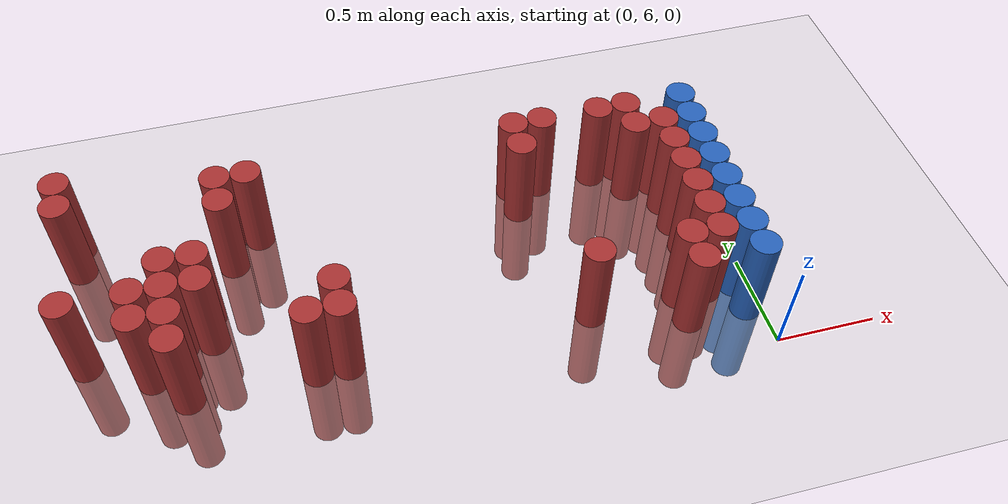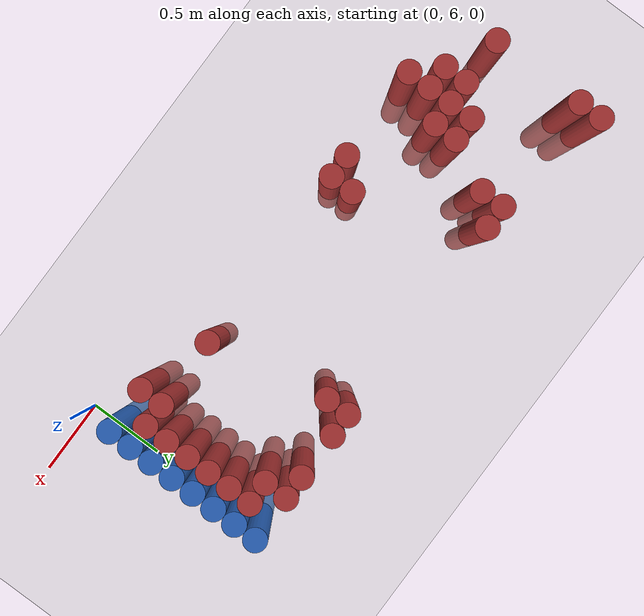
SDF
<sdf version="1.6">
 <world name="default">
  <model name="ground_plane">
   <static>1</static>
   <link name="link">
    <collision name="collision">
     <geometry><plane><normal>0 0 1</normal><size>100 100</size></plane></geometry>
     <surface><friction><ode><mu>100</mu><mu2>50</mu2></ode></friction></surface>
    </collision>
    <visual name="visual">
     <cast_shadows>0</cast_shadows>
     <geometry><plane><normal>0 0 1</normal><size>100 100</size></plane></geometry>
     <material>
      <script><uri>file://media/materials/scripts/gazebo.material</uri><name>Gazebo/Grey</name></script>
     </material>
    </visual>
   </link>
  </model>
  <model name="unit_cylinder_201">
   <static>1</static>
   <pose>-3.225000 6.675000 0.000000 0.000000 0.000000 0.000000</pose>
   <link name="link">
    <inertial>
     <mass>1</mass>
     <inertia><ixx>0.145833</ixx><ixy>0</ixy><ixz>0</ixz><iyy>0.145833</iyy><iyz>0</iyz><izz>0.125</izz></inertia>
    </inertial>
    <collision name="collision">
     <geometry><cylinder><radius>0.075000</radius><length>1</length></cylinder></geometry>
    </collision>
    <visual name="visual">
     <geometry><cylinder><radius>0.075000</radius><length>1</length></cylinder></geometry>
     <material>
      <ambient>0.648000 0.192000 0.192000 1</ambient>
      <diffuse>0.648000 0.192000 0.192000 1</diffuse>
     </material>
     <material>
      <script><name>Gazebo/Grey</name><uri>file://media/materials/scripts/gazebo.material</uri></script>
     </material>
    </visual>
    <sensor name="sensor_contact" type="contact"><contact><collision>collision</collision></contact></sensor>
   </link>
   <plugin filename="gz-sim-touchplugin-system" name="gz::sim::systems::TouchPlugin">
    <target>robot</target>
    <namespace>robot</namespace>
    <time>0.001</time>
    <enabled>true</enabled>
   </plugin>
  </model>
  <model name="unit_cylinder_202">
   <static>1</static>
   <pose>-3.225000 7.275000 0.000000 0.000000 0.000000 0.000000</pose>
   <link name="link">
    <inertial>
     <mass>1</mass>
     <inertia><ixx>0.145833</ixx><ixy>0</ixy><ixz>0</ixz><iyy>0.145833</iyy><iyz>0</iyz><izz>0.125</izz></inertia>
    </inertial>
    <collision name="collision">
     <geometry><cylinder><radius>0.075000</radius><length>1</length></cylinder></geometry>
    </collision>
    <visual name="visual">
     <geometry><cylinder><radius>0.075000</radius><length>1</length></cylinder></geometry>
     <material>
      <ambient>0.648000 0.192000 0.192000 1</ambient>
      <diffuse>0.648000 0.192000 0.192000 1</diffuse>
     </material>
     <material>
      <script><name>Gazebo/Grey</name><uri>file://media/materials/scripts/gazebo.material</uri></script>
     </material>
    </visual>
    <sensor name="sensor_contact" type="contact"><contact><collision>collision</collision></contact></sensor>
   </link>
   <plugin filename="gz-sim-touchplugin-system" name="gz::sim::systems::TouchPlugin">
    <target>robot</target>
    <namespace>robot</namespace>
    <time>0.001</time>
    <enabled>true</enabled>
   </plugin>
  </model>
  <model name="unit_cylinder_203">
   <static>1</static>
   <pose>-3.225000 7.425000 0.000000 0.000000 0.000000 0.000000</pose>
   <link name="link">
    <inertial>
     <mass>1</mass>
     <inertia><ixx>0.145833</ixx><ixy>0</ixy><ixz>0</ixz><iyy>0.145833</iyy><iyz>0</iyz><izz>0.125</izz></inertia>
    </inertial>
    <collision name="collision">
     <geometry><cylinder><radius>0.075000</radius><length>1</length></cylinder></geometry>
    </collision>
    <visual name="visual">
     <geometry><cylinder><radius>0.075000</radius><length>1</length></cylinder></geometry>
     <material>
      <ambient>0.648000 0.192000 0.192000 1</ambient>
      <diffuse>0.648000 0.192000 0.192000 1</diffuse>
     </material>
     <material>
      <script><name>Gazebo/Grey</name><uri>file://media/materials/scripts/gazebo.material</uri></script>
     </material>
    </visual>
    <sensor name="sensor_contact" type="contact"><contact><collision>collision</collision></contact></sensor>
   </link>
   <plugin filename="gz-sim-touchplugin-system" name="gz::sim::systems::TouchPlugin">
    <target>robot</target>
    <namespace>robot</namespace>
    <time>0.001</time>
    <enabled>true</enabled>
   </plugin>
  </model>
  <model name="unit_cylinder_212">
   <static>1</static>
   <pose>-2.925000 6.525000 0.000000 0.000000 0.000000 0.000000</pose>
   <link name="link">
    <inertial>
     <mass>1</mass>
     <inertia><ixx>0.145833</ixx><ixy>0</ixy><ixz>0</ixz><iyy>0.145833</iyy><iyz>0</iyz><izz>0.125</izz></inertia>
    </inertial>
    <collision name="collision">
     <geometry><cylinder><radius>0.075000</radius><length>1</length></cylinder></geometry>
    </collision>
    <visual name="visual">
     <geometry><cylinder><radius>0.075000</radius><length>1</length></cylinder></geometry>
     <material>
      <ambient>0.648000 0.192000 0.192000 1</ambient>
      <diffuse>0.648000 0.192000 0.192000 1</diffuse>
     </material>
     <material>
      <script><name>Gazebo/Grey</name><uri>file://media/materials/scripts/gazebo.material</uri></script>
     </material>
    </visual>
    <sensor name="sensor_contact" type="contact"><contact><collision>collision</collision></contact></sensor>
   </link>
   <plugin filename="gz-sim-touchplugin-system" name="gz::sim::systems::TouchPlugin">
    <target>robot</target>
    <namespace>robot</namespace>
    <time>0.001</time>
    <enabled>true</enabled>
   </plugin>
  </model>
  <model name="unit_cylinder_213">
   <static>1</static>
   <pose>-2.925000 6.675000 0.000000 0.000000 0.000000 0.000000</pose>
   <link name="link">
    <inertial>
     <mass>1</mass>
     <inertia><ixx>0.145833</ixx><ixy>0</ixy><ixz>0</ixz><iyy>0.145833</iyy><iyz>0</iyz><izz>0.125</izz></inertia>
    </inertial>
    <collision name="collision">
     <geometry><cylinder><radius>0.075000</radius><length>1</length></cylinder></geometry>
    </collision>
    <visual name="visual">
     <geometry><cylinder><radius>0.075000</radius><length>1</length></cylinder></geometry>
     <material>
      <ambient>0.648000 0.192000 0.192000 1</ambient>
      <diffuse>0.648000 0.192000 0.192000 1</diffuse>
     </material>
     <material>
      <script><name>Gazebo/Grey</name><uri>file://media/materials/scripts/gazebo.material</uri></script>
     </material>
    </visual>
    <sensor name="sensor_contact" type="contact"><contact><collision>collision</collision></contact></sensor>
   </link>
   <plugin filename="gz-sim-touchplugin-system" name="gz::sim::systems::TouchPlugin">
    <target>robot</target>
    <namespace>robot</namespace>
    <time>0.001</time>
    <enabled>true</enabled>
   </plugin>
  </model>
  <model name="unit_cylinder_221">
   <static>1</static>
   <pose>-2.775000 6.375000 0.000000 0.000000 0.000000 0.000000</pose>
   <link name="link">
    <inertial>
     <mass>1</mass>
     <inertia><ixx>0.145833</ixx><ixy>0</ixy><ixz>0</ixz><iyy>0.145833</iyy><iyz>0</iyz><izz>0.125</izz></inertia>
    </inertial>
    <collision name="collision">
     <geometry><cylinder><radius>0.075000</radius><length>1</length></cylinder></geometry>
    </collision>
    <visual name="visual">
     <geometry><cylinder><radius>0.075000</radius><length>1</length></cylinder></geometry>
     <material>
      <ambient>0.648000 0.192000 0.192000 1</ambient>
      <diffuse>0.648000 0.192000 0.192000 1</diffuse>
     </material>
     <material>
      <script><name>Gazebo/Grey</name><uri>file://media/materials/scripts/gazebo.material</uri></script>
     </material>
    </visual>
    <sensor name="sensor_contact" type="contact"><contact><collision>collision</collision></contact></sensor>
   </link>
   <plugin filename="gz-sim-touchplugin-system" name="gz::sim::systems::TouchPlugin">
    <target>robot</target>
    <namespace>robot</namespace>
    <time>0.001</time>
    <enabled>true</enabled>
   </plugin>
  </model>
  <model name="unit_cylinder_222">
   <static>1</static>
   <pose>-2.775000 6.525000 0.000000 0.000000 0.000000 0.000000</pose>
   <link name="link">
    <inertial>
     <mass>1</mass>
     <inertia><ixx>0.145833</ixx><ixy>0</ixy><ixz>0</ixz><iyy>0.145833</iyy><iyz>0</iyz><izz>0.125</izz></inertia>
    </inertial>
    <collision name="collision">
     <geometry><cylinder><radius>0.075000</radius><length>1</length></cylinder></geometry>
    </collision>
    <visual name="visual">
     <geometry><cylinder><radius>0.075000</radius><length>1</length></cylinder></geometry>
     <material>
      <ambient>0.648000 0.192000 0.192000 1</ambient>
      <diffuse>0.648000 0.192000 0.192000 1</diffuse>
     </material>
     <material>
      <script><name>Gazebo/Grey</name><uri>file://media/materials/scripts/gazebo.material</uri></script>
     </material>
    </visual>
    <sensor name="sensor_contact" type="contact"><contact><collision>collision</collision></contact></sensor>
   </link>
   <plugin filename="gz-sim-touchplugin-system" name="gz::sim::systems::TouchPlugin">
    <target>robot</target>
    <namespace>robot</namespace>
    <time>0.001</time>
    <enabled>true</enabled>
   </plugin>
  </model>
  <model name="unit_cylinder_223">
   <static>1</static>
   <pose>-2.775000 6.675000 0.000000 0.000000 0.000000 0.000000</pose>
   <link name="link">
    <inertial>
     <mass>1</mass>
     <inertia><ixx>0.145833</ixx><ixy>0</ixy><ixz>0</ixz><iyy>0.145833</iyy><iyz>0</iyz><izz>0.125</izz></inertia>
    </inertial>
    <collision name="collision">
     <geometry><cylinder><radius>0.075000</radius><length>1</length></cylinder></geometry>
    </collision>
    <visual name="visual">
     <geometry><cylinder><radius>0.075000</radius><length>1</length></cylinder></geometry>
     <material>
      <ambient>0.648000 0.192000 0.192000 1</ambient>
      <diffuse>0.648000 0.192000 0.192000 1</diffuse>
     </material>
     <material>
      <script><name>Gazebo/Grey</name><uri>file://media/materials/scripts/gazebo.material</uri></script>
     </material>
    </visual>
    <sensor name="sensor_contact" type="contact"><contact><collision>collision</collision></contact></sensor>
   </link>
   <plugin filename="gz-sim-touchplugin-system" name="gz::sim::systems::TouchPlugin">
    <target>robot</target>
    <namespace>robot</namespace>
    <time>0.001</time>
    <enabled>true</enabled>
   </plugin>
  </model>
  <model name="unit_cylinder_224">
   <static>1</static>
   <pose>-2.775000 6.825000 0.000000 0.000000 0.000000 0.000000</pose>
   <link name="link">
    <inertial>
     <mass>1</mass>
     <inertia><ixx>0.145833</ixx><ixy>0</ixy><ixz>0</ixz><iyy>0.145833</iyy><iyz>0</iyz><izz>0.125</izz></inertia>
    </inertial>
    <collision name="collision">
     <geometry><cylinder><radius>0.075000</radius><length>1</length></cylinder></geometry>
    </collision>
    <visual name="visual">
     <geometry><cylinder><radius>0.075000</radius><length>1</length></cylinder></geometry>
     <material>
      <ambient>0.648000 0.192000 0.192000 1</ambient>
      <diffuse>0.648000 0.192000 0.192000 1</diffuse>
     </material>
     <material>
      <script><name>Gazebo/Grey</name><uri>file://media/materials/scripts/gazebo.material</uri></script>
     </material>
    </visual>
    <sensor name="sensor_contact" type="contact"><contact><collision>collision</collision></contact></sensor>
   </link>
   <plugin filename="gz-sim-touchplugin-system" name="gz::sim::systems::TouchPlugin">
    <target>robot</target>
    <namespace>robot</namespace>
    <time>0.001</time>
    <enabled>true</enabled>
   </plugin>
  </model>
  <model name="unit_cylinder_235">
   <static>1</static>
   <pose>-2.625000 6.675000 0.000000 0.000000 0.000000 0.000000</pose>
   <link name="link">
    <inertial>
     <mass>1</mass>
     <inertia><ixx>0.145833</ixx><ixy>0</ixy><ixz>0</ixz><iyy>0.145833</iyy><iyz>0</iyz><izz>0.125</izz></inertia>
    </inertial>
    <collision name="collision">
     <geometry><cylinder><radius>0.075000</radius><length>1</length></cylinder></geometry>
    </collision>
    <visual name="visual">
     <geometry><cylinder><radius>0.075000</radius><length>1</length></cylinder></geometry>
     <material>
      <ambient>0.648000 0.192000 0.192000 1</ambient>
      <diffuse>0.648000 0.192000 0.192000 1</diffuse>
     </material>
     <material>
      <script><name>Gazebo/Grey</name><uri>file://media/materials/scripts/gazebo.material</uri></script>
     </material>
    </visual>
    <sensor name="sensor_contact" type="contact"><contact><collision>collision</collision></contact></sensor>
   </link>
   <plugin filename="gz-sim-touchplugin-system" name="gz::sim::systems::TouchPlugin">
    <target>robot</target>
    <namespace>robot</namespace>
    <time>0.001</time>
    <enabled>true</enabled>
   </plugin>
  </model>
  <model name="unit_cylinder_236">
   <static>1</static>
   <pose>-2.625000 6.825000 0.000000 0.000000 0.000000 0.000000</pose>
   <link name="link">
    <inertial>
     <mass>1</mass>
     <inertia><ixx>0.145833</ixx><ixy>0</ixy><ixz>0</ixz><iyy>0.145833</iyy><iyz>0</iyz><izz>0.125</izz></inertia>
    </inertial>
    <collision name="collision">
     <geometry><cylinder><radius>0.075000</radius><length>1</length></cylinder></geometry>
    </collision>
    <visual name="visual">
     <geometry><cylinder><radius>0.075000</radius><length>1</length></cylinder></geometry>
     <material>
      <ambient>0.648000 0.192000 0.192000 1</ambient>
      <diffuse>0.648000 0.192000 0.192000 1</diffuse>
     </material>
     <material>
      <script><name>Gazebo/Grey</name><uri>file://media/materials/scripts/gazebo.material</uri></script>
     </material>
    </visual>
    <sensor name="sensor_contact" type="contact"><contact><collision>collision</collision></contact></sensor>
   </link>
   <plugin filename="gz-sim-touchplugin-system" name="gz::sim::systems::TouchPlugin">
    <target>robot</target>
    <namespace>robot</namespace>
    <time>0.001</time>
    <enabled>true</enabled>
   </plugin>
  </model>
  <model name="unit_cylinder_245">
   <static>1</static>
   <pose>-2.475000 7.125000 0.000000 0.000000 0.000000 0.000000</pose>
   <link name="link">
    <inertial>
     <mass>1</mass>
     <inertia><ixx>0.145833</ixx><ixy>0</ixy><ixz>0</ixz><iyy>0.145833</iyy><iyz>0</iyz><izz>0.125</izz></inertia>
    </inertial>
    <collision name="collision">
     <geometry><cylinder><radius>0.075000</radius><length>1</length></cylinder></geometry>
    </collision>
    <visual name="visual">
     <geometry><cylinder><radius>0.075000</radius><length>1</length></cylinder></geometry>
     <material>
      <ambient>0.648000 0.192000 0.192000 1</ambient>
      <diffuse>0.648000 0.192000 0.192000 1</diffuse>
     </material>
     <material>
      <script><name>Gazebo/Grey</name><uri>file://media/materials/scripts/gazebo.material</uri></script>
     </material>
    </visual>
    <sensor name="sensor_contact" type="contact"><contact><collision>collision</collision></contact></sensor>
   </link>
   <plugin filename="gz-sim-touchplugin-system" name="gz::sim::systems::TouchPlugin">
    <target>robot</target>
    <namespace>robot</namespace>
    <time>0.001</time>
    <enabled>true</enabled>
   </plugin>
  </model>
  <model name="unit_cylinder_246">
   <static>1</static>
   <pose>-2.475000 7.275000 0.000000 0.000000 0.000000 0.000000</pose>
   <link name="link">
    <inertial>
     <mass>1</mass>
     <inertia><ixx>0.145833</ixx><ixy>0</ixy><ixz>0</ixz><iyy>0.145833</iyy><iyz>0</iyz><izz>0.125</izz></inertia>
    </inertial>
    <collision name="collision">
     <geometry><cylinder><radius>0.075000</radius><length>1</length></cylinder></geometry>
    </collision>
    <visual name="visual">
     <geometry><cylinder><radius>0.075000</radius><length>1</length></cylinder></geometry>
     <material>
      <ambient>0.648000 0.192000 0.192000 1</ambient>
      <diffuse>0.648000 0.192000 0.192000 1</diffuse>
     </material>
     <material>
      <script><name>Gazebo/Grey</name><uri>file://media/materials/scripts/gazebo.material</uri></script>
     </material>
    </visual>
    <sensor name="sensor_contact" type="contact"><contact><collision>collision</collision></contact></sensor>
   </link>
   <plugin filename="gz-sim-touchplugin-system" name="gz::sim::systems::TouchPlugin">
    <target>robot</target>
    <namespace>robot</namespace>
    <time>0.001</time>
    <enabled>true</enabled>
   </plugin>
  </model>
  <model name="unit_cylinder_253">
   <static>1</static>
   <pose>-2.325000 7.275000 0.000000 0.000000 0.000000 0.000000</pose>
   <link name="link">
    <inertial>
     <mass>1</mass>
     <inertia><ixx>0.145833</ixx><ixy>0</ixy><ixz>0</ixz><iyy>0.145833</iyy><iyz>0</iyz><izz>0.125</izz></inertia>
    </inertial>
    <collision name="collision">
     <geometry><cylinder><radius>0.075000</radius><length>1</length></cylinder></geometry>
    </collision>
    <visual name="visual">
     <geometry><cylinder><radius>0.075000</radius><length>1</length></cylinder></geometry>
     <material>
      <ambient>0.648000 0.192000 0.192000 1</ambient>
      <diffuse>0.648000 0.192000 0.192000 1</diffuse>
     </material>
     <material>
      <script><name>Gazebo/Grey</name><uri>file://media/materials/scripts/gazebo.material</uri></script>
     </material>
    </visual>
    <sensor name="sensor_contact" type="contact"><contact><collision>collision</collision></contact></sensor>
   </link>
   <plugin filename="gz-sim-touchplugin-system" name="gz::sim::systems::TouchPlugin">
    <target>robot</target>
    <namespace>robot</namespace>
    <time>0.001</time>
    <enabled>true</enabled>
   </plugin>
  </model>
  <model name="unit_cylinder_264">
   <static>1</static>
   <pose>-2.175000 6.375000 0.000000 0.000000 0.000000 0.000000</pose>
   <link name="link">
    <inertial>
     <mass>1</mass>
     <inertia><ixx>0.145833</ixx><ixy>0</ixy><ixz>0</ixz><iyy>0.145833</iyy><iyz>0</iyz><izz>0.125</izz></inertia>
    </inertial>
    <collision name="collision">
     <geometry><cylinder><radius>0.075000</radius><length>1</length></cylinder></geometry>
    </collision>
    <visual name="visual">
     <geometry><cylinder><radius>0.075000</radius><length>1</length></cylinder></geometry>
     <material>
      <ambient>0.648000 0.192000 0.192000 1</ambient>
      <diffuse>0.648000 0.192000 0.192000 1</diffuse>
     </material>
     <material>
      <script><name>Gazebo/Grey</name><uri>file://media/materials/scripts/gazebo.material</uri></script>
     </material>
    </visual>
    <sensor name="sensor_contact" type="contact"><contact><collision>collision</collision></contact></sensor>
   </link>
   <plugin filename="gz-sim-touchplugin-system" name="gz::sim::systems::TouchPlugin">
    <target>robot</target>
    <namespace>robot</namespace>
    <time>0.001</time>
    <enabled>true</enabled>
   </plugin>
  </model>
  <model name="unit_cylinder_271">
   <static>1</static>
   <pose>-2.025000 6.375000 0.000000 0.000000 0.000000 0.000000</pose>
   <link name="link">
    <inertial>
     <mass>1</mass>
     <inertia><ixx>0.145833</ixx><ixy>0</ixy><ixz>0</ixz><iyy>0.145833</iyy><iyz>0</iyz><izz>0.125</izz></inertia>
    </inertial>
    <collision name="collision">
     <geometry><cylinder><radius>0.075000</radius><length>1</length></cylinder></geometry>
    </collision>
    <visual name="visual">
     <geometry><cylinder><radius>0.075000</radius><length>1</length></cylinder></geometry>
     <material>
      <ambient>0.648000 0.192000 0.192000 1</ambient>
      <diffuse>0.648000 0.192000 0.192000 1</diffuse>
     </material>
     <material>
      <script><name>Gazebo/Grey</name><uri>file://media/materials/scripts/gazebo.material</uri></script>
     </material>
    </visual>
    <sensor name="sensor_contact" type="contact"><contact><collision>collision</collision></contact></sensor>
   </link>
   <plugin filename="gz-sim-touchplugin-system" name="gz::sim::systems::TouchPlugin">
    <target>robot</target>
    <namespace>robot</namespace>
    <time>0.001</time>
    <enabled>true</enabled>
   </plugin>
  </model>
  <model name="unit_cylinder_272">
   <static>1</static>
   <pose>-2.025000 6.525000 0.000000 0.000000 0.000000 0.000000</pose>
   <link name="link">
    <inertial>
     <mass>1</mass>
     <inertia><ixx>0.145833</ixx><ixy>0</ixy><ixz>0</ixz><iyy>0.145833</iyy><iyz>0</iyz><izz>0.125</izz></inertia>
    </inertial>
    <collision name="collision">
     <geometry><cylinder><radius>0.075000</radius><length>1</length></cylinder></geometry>
    </collision>
    <visual name="visual">
     <geometry><cylinder><radius>0.075000</radius><length>1</length></cylinder></geometry>
     <material>
      <ambient>0.648000 0.192000 0.192000 1</ambient>
      <diffuse>0.648000 0.192000 0.192000 1</diffuse>
     </material>
     <material>
      <script><name>Gazebo/Grey</name><uri>file://media/materials/scripts/gazebo.material</uri></script>
     </material>
    </visual>
    <sensor name="sensor_contact" type="contact"><contact><collision>collision</collision></contact></sensor>
   </link>
   <plugin filename="gz-sim-touchplugin-system" name="gz::sim::systems::TouchPlugin">
    <target>robot</target>
    <namespace>robot</namespace>
    <time>0.001</time>
    <enabled>true</enabled>
   </plugin>
  </model>
  <model name="unit_cylinder_279">
   <static>1</static>
   <pose>-0.975000 7.125000 0.000000 0.000000 0.000000 0.000000</pose>
   <link name="link">
    <inertial>
     <mass>1</mass>
     <inertia><ixx>0.145833</ixx><ixy>0</ixy><ixz>0</ixz><iyy>0.145833</iyy><iyz>0</iyz><izz>0.125</izz></inertia>
    </inertial>
    <collision name="collision">
     <geometry><cylinder><radius>0.075000</radius><length>1</length></cylinder></geometry>
    </collision>
    <visual name="visual">
     <geometry><cylinder><radius>0.075000</radius><length>1</length></cylinder></geometry>
     <material>
      <ambient>0.648000 0.192000 0.192000 1</ambient>
      <diffuse>0.648000 0.192000 0.192000 1</diffuse>
     </material>
     <material>
      <script><name>Gazebo/Grey</name><uri>file://media/materials/scripts/gazebo.material</uri></script>
     </material>
    </visual>
    <sensor name="sensor_contact" type="contact"><contact><collision>collision</collision></contact></sensor>
   </link>
   <plugin filename="gz-sim-touchplugin-system" name="gz::sim::systems::TouchPlugin">
    <target>robot</target>
    <namespace>robot</namespace>
    <time>0.001</time>
    <enabled>true</enabled>
   </plugin>
  </model>
  <model name="unit_cylinder_280">
   <static>1</static>
   <pose>-0.975000 7.275000 0.000000 0.000000 0.000000 0.000000</pose>
   <link name="link">
    <inertial>
     <mass>1</mass>
     <inertia><ixx>0.145833</ixx><ixy>0</ixy><ixz>0</ixz><iyy>0.145833</iyy><iyz>0</iyz><izz>0.125</izz></inertia>
    </inertial>
    <collision name="collision">
     <geometry><cylinder><radius>0.075000</radius><length>1</length></cylinder></geometry>
    </collision>
    <visual name="visual">
     <geometry><cylinder><radius>0.075000</radius><length>1</length></cylinder></geometry>
     <material>
      <ambient>0.648000 0.192000 0.192000 1</ambient>
      <diffuse>0.648000 0.192000 0.192000 1</diffuse>
     </material>
     <material>
      <script><name>Gazebo/Grey</name><uri>file://media/materials/scripts/gazebo.material</uri></script>
     </material>
    </visual>
    <sensor name="sensor_contact" type="contact"><contact><collision>collision</collision></contact></sensor>
   </link>
   <plugin filename="gz-sim-touchplugin-system" name="gz::sim::systems::TouchPlugin">
    <target>robot</target>
    <namespace>robot</namespace>
    <time>0.001</time>
    <enabled>true</enabled>
   </plugin>
  </model>
  <model name="unit_cylinder_285">
   <static>1</static>
   <pose>-0.825000 6.375000 0.000000 0.000000 0.000000 0.000000</pose>
   <link name="link">
    <inertial>
     <mass>1</mass>
     <inertia><ixx>0.145833</ixx><ixy>0</ixy><ixz>0</ixz><iyy>0.145833</iyy><iyz>0</iyz><izz>0.125</izz></inertia>
    </inertial>
    <collision name="collision">
     <geometry><cylinder><radius>0.075000</radius><length>1</length></cylinder></geometry>
    </collision>
    <visual name="visual">
     <geometry><cylinder><radius>0.075000</radius><length>1</length></cylinder></geometry>
     <material>
      <ambient>0.648000 0.192000 0.192000 1</ambient>
      <diffuse>0.648000 0.192000 0.192000 1</diffuse>
     </material>
     <material>
      <script><name>Gazebo/Grey</name><uri>file://media/materials/scripts/gazebo.material</uri></script>
     </material>
    </visual>
    <sensor name="sensor_contact" type="contact"><contact><collision>collision</collision></contact></sensor>
   </link>
   <plugin filename="gz-sim-touchplugin-system" name="gz::sim::systems::TouchPlugin">
    <target>robot</target>
    <namespace>robot</namespace>
    <time>0.001</time>
    <enabled>true</enabled>
   </plugin>
  </model>
  <model name="unit_cylinder_286">
   <static>1</static>
   <pose>-0.825000 7.275000 0.000000 0.000000 0.000000 0.000000</pose>
   <link name="link">
    <inertial>
     <mass>1</mass>
     <inertia><ixx>0.145833</ixx><ixy>0</ixy><ixz>0</ixz><iyy>0.145833</iyy><iyz>0</iyz><izz>0.125</izz></inertia>
    </inertial>
    <collision name="collision">
     <geometry><cylinder><radius>0.075000</radius><length>1</length></cylinder></geometry>
    </collision>
    <visual name="visual">
     <geometry><cylinder><radius>0.075000</radius><length>1</length></cylinder></geometry>
     <material>
      <ambient>0.648000 0.192000 0.192000 1</ambient>
      <diffuse>0.648000 0.192000 0.192000 1</diffuse>
     </material>
     <material>
      <script><name>Gazebo/Grey</name><uri>file://media/materials/scripts/gazebo.material</uri></script>
     </material>
    </visual>
    <sensor name="sensor_contact" type="contact"><contact><collision>collision</collision></contact></sensor>
   </link>
   <plugin filename="gz-sim-touchplugin-system" name="gz::sim::systems::TouchPlugin">
    <target>robot</target>
    <namespace>robot</namespace>
    <time>0.001</time>
    <enabled>true</enabled>
   </plugin>
  </model>
  <model name="unit_cylinder_299">
   <static>1</static>
   <pose>-0.525000 7.275000 0.000000 0.000000 0.000000 0.000000</pose>
   <link name="link">
    <inertial>
     <mass>1</mass>
     <inertia><ixx>0.145833</ixx><ixy>0</ixy><ixz>0</ixz><iyy>0.145833</iyy><iyz>0</iyz><izz>0.125</izz></inertia>
    </inertial>
    <collision name="collision">
     <geometry><cylinder><radius>0.075000</radius><length>1</length></cylinder></geometry>
    </collision>
    <visual name="visual">
     <geometry><cylinder><radius>0.075000</radius><length>1</length></cylinder></geometry>
     <material>
      <ambient>0.648000 0.192000 0.192000 1</ambient>
      <diffuse>0.648000 0.192000 0.192000 1</diffuse>
     </material>
     <material>
      <script><name>Gazebo/Grey</name><uri>file://media/materials/scripts/gazebo.material</uri></script>
     </material>
    </visual>
    <sensor name="sensor_contact" type="contact"><contact><collision>collision</collision></contact></sensor>
   </link>
   <plugin filename="gz-sim-touchplugin-system" name="gz::sim::systems::TouchPlugin">
    <target>robot</target>
    <namespace>robot</namespace>
    <time>0.001</time>
    <enabled>true</enabled>
   </plugin>
  </model>
  <model name="unit_cylinder_303">
   <static>1</static>
   <pose>-0.375000 6.225000 0.000000 0.000000 0.000000 0.000000</pose>
   <link name="link">
    <inertial>
     <mass>1</mass>
     <inertia><ixx>0.145833</ixx><ixy>0</ixy><ixz>0</ixz><iyy>0.145833</iyy><iyz>0</iyz><izz>0.125</izz></inertia>
    </inertial>
    <collision name="collision">
     <geometry><cylinder><radius>0.075000</radius><length>1</length></cylinder></geometry>
    </collision>
    <visual name="visual">
     <geometry><cylinder><radius>0.075000</radius><length>1</length></cylinder></geometry>
     <material>
      <ambient>0.648000 0.192000 0.192000 1</ambient>
      <diffuse>0.648000 0.192000 0.192000 1</diffuse>
     </material>
     <material>
      <script><name>Gazebo/Grey</name><uri>file://media/materials/scripts/gazebo.material</uri></script>
     </material>
    </visual>
    <sensor name="sensor_contact" type="contact"><contact><collision>collision</collision></contact></sensor>
   </link>
   <plugin filename="gz-sim-touchplugin-system" name="gz::sim::systems::TouchPlugin">
    <target>robot</target>
    <namespace>robot</namespace>
    <time>0.001</time>
    <enabled>true</enabled>
   </plugin>
  </model>
  <model name="unit_cylinder_304">
   <static>1</static>
   <pose>-0.375000 6.375000 0.000000 0.000000 0.000000 0.000000</pose>
   <link name="link">
    <inertial>
     <mass>1</mass>
     <inertia><ixx>0.145833</ixx><ixy>0</ixy><ixz>0</ixz><iyy>0.145833</iyy><iyz>0</iyz><izz>0.125</izz></inertia>
    </inertial>
    <collision name="collision">
     <geometry><cylinder><radius>0.075000</radius><length>1</length></cylinder></geometry>
    </collision>
    <visual name="visual">
     <geometry><cylinder><radius>0.075000</radius><length>1</length></cylinder></geometry>
     <material>
      <ambient>0.648000 0.192000 0.192000 1</ambient>
      <diffuse>0.648000 0.192000 0.192000 1</diffuse>
     </material>
     <material>
      <script><name>Gazebo/Grey</name><uri>file://media/materials/scripts/gazebo.material</uri></script>
     </material>
    </visual>
    <sensor name="sensor_contact" type="contact"><contact><collision>collision</collision></contact></sensor>
   </link>
   <plugin filename="gz-sim-touchplugin-system" name="gz::sim::systems::TouchPlugin">
    <target>robot</target>
    <namespace>robot</namespace>
    <time>0.001</time>
    <enabled>true</enabled>
   </plugin>
  </model>
  <model name="unit_cylinder_305">
   <static>1</static>
   <pose>-0.375000 7.125000 0.000000 0.000000 0.000000 0.000000</pose>
   <link name="link">
    <inertial>
     <mass>1</mass>
     <inertia><ixx>0.145833</ixx><ixy>0</ixy><ixz>0</ixz><iyy>0.145833</iyy><iyz>0</iyz><izz>0.125</izz></inertia>
    </inertial>
    <collision name="collision">
     <geometry><cylinder><radius>0.075000</radius><length>1</length></cylinder></geometry>
    </collision>
    <visual name="visual">
     <geometry><cylinder><radius>0.075000</radius><length>1</length></cylinder></geometry>
     <material>
      <ambient>0.648000 0.192000 0.192000 1</ambient>
      <diffuse>0.648000 0.192000 0.192000 1</diffuse>
     </material>
     <material>
      <script><name>Gazebo/Grey</name><uri>file://media/materials/scripts/gazebo.material</uri></script>
     </material>
    </visual>
    <sensor name="sensor_contact" type="contact"><contact><collision>collision</collision></contact></sensor>
   </link>
   <plugin filename="gz-sim-touchplugin-system" name="gz::sim::systems::TouchPlugin">
    <target>robot</target>
    <namespace>robot</namespace>
    <time>0.001</time>
    <enabled>true</enabled>
   </plugin>
  </model>
  <model name="unit_cylinder_306">
   <static>1</static>
   <pose>-0.375000 7.275000 0.000000 0.000000 0.000000 0.000000</pose>
   <link name="link">
    <inertial>
     <mass>1</mass>
     <inertia><ixx>0.145833</ixx><ixy>0</ixy><ixz>0</ixz><iyy>0.145833</iyy><iyz>0</iyz><izz>0.125</izz></inertia>
    </inertial>
    <collision name="collision">
     <geometry><cylinder><radius>0.075000</radius><length>1</length></cylinder></geometry>
    </collision>
    <visual name="visual">
     <geometry><cylinder><radius>0.075000</radius><length>1</length></cylinder></geometry>
     <material>
      <ambient>0.648000 0.192000 0.192000 1</ambient>
      <diffuse>0.648000 0.192000 0.192000 1</diffuse>
     </material>
     <material>
      <script><name>Gazebo/Grey</name><uri>file://media/materials/scripts/gazebo.material</uri></script>
     </material>
    </visual>
    <sensor name="sensor_contact" type="contact"><contact><collision>collision</collision></contact></sensor>
   </link>
   <plugin filename="gz-sim-touchplugin-system" name="gz::sim::systems::TouchPlugin">
    <target>robot</target>
    <namespace>robot</namespace>
    <time>0.001</time>
    <enabled>true</enabled>
   </plugin>
  </model>
  <model name="unit_cylinder_318">
   <static>1</static>
   <pose>-0.225000 6.375000 0.000000 0.000000 0.000000 0.000000</pose>
   <link name="link">
    <inertial>
     <mass>1</mass>
     <inertia><ixx>0.145833</ixx><ixy>0</ixy><ixz>0</ixz><iyy>0.145833</iyy><iyz>0</iyz><izz>0.125</izz></inertia>
    </inertial>
    <collision name="collision">
     <geometry><cylinder><radius>0.075000</radius><length>1</length></cylinder></geometry>
    </collision>
    <visual name="visual">
     <geometry><cylinder><radius>0.075000</radius><length>1</length></cylinder></geometry>
     <material>
      <ambient>0.648000 0.192000 0.192000 1</ambient>
      <diffuse>0.648000 0.192000 0.192000 1</diffuse>
     </material>
     <material>
      <script><name>Gazebo/Grey</name><uri>file://media/materials/scripts/gazebo.material</uri></script>
     </material>
    </visual>
    <sensor name="sensor_contact" type="contact"><contact><collision>collision</collision></contact></sensor>
   </link>
   <plugin filename="gz-sim-touchplugin-system" name="gz::sim::systems::TouchPlugin">
    <target>robot</target>
    <namespace>robot</namespace>
    <time>0.001</time>
    <enabled>true</enabled>
   </plugin>
  </model>
  <model name="unit_cylinder_319">
   <static>1</static>
   <pose>-0.225000 6.525000 0.000000 0.000000 0.000000 0.000000</pose>
   <link name="link">
    <inertial>
     <mass>1</mass>
     <inertia><ixx>0.145833</ixx><ixy>0</ixy><ixz>0</ixz><iyy>0.145833</iyy><iyz>0</iyz><izz>0.125</izz></inertia>
    </inertial>
    <collision name="collision">
     <geometry><cylinder><radius>0.075000</radius><length>1</length></cylinder></geometry>
    </collision>
    <visual name="visual">
     <geometry><cylinder><radius>0.075000</radius><length>1</length></cylinder></geometry>
     <material>
      <ambient>0.648000 0.192000 0.192000 1</ambient>
      <diffuse>0.648000 0.192000 0.192000 1</diffuse>
     </material>
     <material>
      <script><name>Gazebo/Grey</name><uri>file://media/materials/scripts/gazebo.material</uri></script>
     </material>
    </visual>
    <sensor name="sensor_contact" type="contact"><contact><collision>collision</collision></contact></sensor>
   </link>
   <plugin filename="gz-sim-touchplugin-system" name="gz::sim::systems::TouchPlugin">
    <target>robot</target>
    <namespace>robot</namespace>
    <time>0.001</time>
    <enabled>true</enabled>
   </plugin>
  </model>
  <model name="unit_cylinder_320">
   <static>1</static>
   <pose>-0.225000 6.675000 0.000000 0.000000 0.000000 0.000000</pose>
   <link name="link">
    <inertial>
     <mass>1</mass>
     <inertia><ixx>0.145833</ixx><ixy>0</ixy><ixz>0</ixz><iyy>0.145833</iyy><iyz>0</iyz><izz>0.125</izz></inertia>
    </inertial>
    <collision name="collision">
     <geometry><cylinder><radius>0.075000</radius><length>1</length></cylinder></geometry>
    </collision>
    <visual name="visual">
     <geometry><cylinder><radius>0.075000</radius><length>1</length></cylinder></geometry>
     <material>
      <ambient>0.648000 0.192000 0.192000 1</ambient>
      <diffuse>0.648000 0.192000 0.192000 1</diffuse>
     </material>
     <material>
      <script><name>Gazebo/Grey</name><uri>file://media/materials/scripts/gazebo.material</uri></script>
     </material>
    </visual>
    <sensor name="sensor_contact" type="contact"><contact><collision>collision</collision></contact></sensor>
   </link>
   <plugin filename="gz-sim-touchplugin-system" name="gz::sim::systems::TouchPlugin">
    <target>robot</target>
    <namespace>robot</namespace>
    <time>0.001</time>
    <enabled>true</enabled>
   </plugin>
  </model>
  <model name="unit_cylinder_321">
   <static>1</static>
   <pose>-0.225000 6.825000 0.000000 0.000000 0.000000 0.000000</pose>
   <link name="link">
    <inertial>
     <mass>1</mass>
     <inertia><ixx>0.145833</ixx><ixy>0</ixy><ixz>0</ixz><iyy>0.145833</iyy><iyz>0</iyz><izz>0.125</izz></inertia>
    </inertial>
    <collision name="collision">
     <geometry><cylinder><radius>0.075000</radius><length>1</length></cylinder></geometry>
    </collision>
    <visual name="visual">
     <geometry><cylinder><radius>0.075000</radius><length>1</length></cylinder></geometry>
     <material>
      <ambient>0.648000 0.192000 0.192000 1</ambient>
      <diffuse>0.648000 0.192000 0.192000 1</diffuse>
     </material>
     <material>
      <script><name>Gazebo/Grey</name><uri>file://media/materials/scripts/gazebo.material</uri></script>
     </material>
    </visual>
    <sensor name="sensor_contact" type="contact"><contact><collision>collision</collision></contact></sensor>
   </link>
   <plugin filename="gz-sim-touchplugin-system" name="gz::sim::systems::TouchPlugin">
    <target>robot</target>
    <namespace>robot</namespace>
    <time>0.001</time>
    <enabled>true</enabled>
   </plugin>
  </model>
  <model name="unit_cylinder_322">
   <static>1</static>
   <pose>-0.225000 6.975000 0.000000 0.000000 0.000000 0.000000</pose>
   <link name="link">
    <inertial>
     <mass>1</mass>
     <inertia><ixx>0.145833</ixx><ixy>0</ixy><ixz>0</ixz><iyy>0.145833</iyy><iyz>0</iyz><izz>0.125</izz></inertia>
    </inertial>
    <collision name="collision">
     <geometry><cylinder><radius>0.075000</radius><length>1</length></cylinder></geometry>
    </collision>
    <visual name="visual">
     <geometry><cylinder><radius>0.075000</radius><length>1</length></cylinder></geometry>
     <material>
      <ambient>0.648000 0.192000 0.192000 1</ambient>
      <diffuse>0.648000 0.192000 0.192000 1</diffuse>
     </material>
     <material>
      <script><name>Gazebo/Grey</name><uri>file://media/materials/scripts/gazebo.material</uri></script>
     </material>
    </visual>
    <sensor name="sensor_contact" type="contact"><contact><collision>collision</collision></contact></sensor>
   </link>
   <plugin filename="gz-sim-touchplugin-system" name="gz::sim::systems::TouchPlugin">
    <target>robot</target>
    <namespace>robot</namespace>
    <time>0.001</time>
    <enabled>true</enabled>
   </plugin>
  </model>
  <model name="unit_cylinder_323">
   <static>1</static>
   <pose>-0.225000 7.125000 0.000000 0.000000 0.000000 0.000000</pose>
   <link name="link">
    <inertial>
     <mass>1</mass>
     <inertia><ixx>0.145833</ixx><ixy>0</ixy><ixz>0</ixz><iyy>0.145833</iyy><iyz>0</iyz><izz>0.125</izz></inertia>
    </inertial>
    <collision name="collision">
     <geometry><cylinder><radius>0.075000</radius><length>1</length></cylinder></geometry>
    </collision>
    <visual name="visual">
     <geometry><cylinder><radius>0.075000</radius><length>1</length></cylinder></geometry>
     <material>
      <ambient>0.648000 0.192000 0.192000 1</ambient>
      <diffuse>0.648000 0.192000 0.192000 1</diffuse>
     </material>
     <material>
      <script><name>Gazebo/Grey</name><uri>file://media/materials/scripts/gazebo.material</uri></script>
     </material>
    </visual>
    <sensor name="sensor_contact" type="contact"><contact><collision>collision</collision></contact></sensor>
   </link>
   <plugin filename="gz-sim-touchplugin-system" name="gz::sim::systems::TouchPlugin">
    <target>robot</target>
    <namespace>robot</namespace>
    <time>0.001</time>
    <enabled>true</enabled>
   </plugin>
  </model>
  <model name="unit_cylinder_338">
   <static>1</static>
   <pose>-0.075000 6.225000 0.000000 0.000000 0.000000 0.000000</pose>
   <link name="link">
    <inertial>
     <mass>1</mass>
     <inertia><ixx>0.145833</ixx><ixy>0</ixy><ixz>0</ixz><iyy>0.145833</iyy><iyz>0</iyz><izz>0.125</izz></inertia>
    </inertial>
    <collision name="collision">
     <geometry><cylinder><radius>0.075000</radius><length>1</length></cylinder></geometry>
    </collision>
    <visual name="visual">
     <geometry><cylinder><radius>0.075000</radius><length>1</length></cylinder></geometry>
     <material>
      <ambient>0.152000 0.379000 0.720000 1</ambient>
      <diffuse>0.152000 0.379000 0.720000 1</diffuse>
     </material>
     <material>
      <script><name>Gazebo/Grey</name><uri>file://media/materials/scripts/gazebo.material</uri></script>
     </material>
    </visual>
    <sensor name="sensor_contact" type="contact"><contact><collision>collision</collision></contact></sensor>
   </link>
   <plugin filename="gz-sim-touchplugin-system" name="gz::sim::systems::TouchPlugin">
    <target>robot</target>
    <namespace>robot</namespace>
    <time>0.001</time>
    <enabled>true</enabled>
   </plugin>
  </model>
  <model name="unit_cylinder_339">
   <static>1</static>
   <pose>-0.075000 6.375000 0.000000 0.000000 0.000000 0.000000</pose>
   <link name="link">
    <inertial>
     <mass>1</mass>
     <inertia><ixx>0.145833</ixx><ixy>0</ixy><ixz>0</ixz><iyy>0.145833</iyy><iyz>0</iyz><izz>0.125</izz></inertia>
    </inertial>
    <collision name="collision">
     <geometry><cylinder><radius>0.075000</radius><length>1</length></cylinder></geometry>
    </collision>
    <visual name="visual">
     <geometry><cylinder><radius>0.075000</radius><length>1</length></cylinder></geometry>
     <material>
      <ambient>0.152000 0.379000 0.720000 1</ambient>
      <diffuse>0.152000 0.379000 0.720000 1</diffuse>
     </material>
     <material>
      <script><name>Gazebo/Grey</name><uri>file://media/materials/scripts/gazebo.material</uri></script>
     </material>
    </visual>
    <sensor name="sensor_contact" type="contact"><contact><collision>collision</collision></contact></sensor>
   </link>
   <plugin filename="gz-sim-touchplugin-system" name="gz::sim::systems::TouchPlugin">
    <target>robot</target>
    <namespace>robot</namespace>
    <time>0.001</time>
    <enabled>true</enabled>
   </plugin>
  </model>
  <model name="unit_cylinder_340">
   <static>1</static>
   <pose>-0.075000 6.525000 0.000000 0.000000 0.000000 0.000000</pose>
   <link name="link">
    <inertial>
     <mass>1</mass>
     <inertia><ixx>0.145833</ixx><ixy>0</ixy><ixz>0</ixz><iyy>0.145833</iyy><iyz>0</iyz><izz>0.125</izz></inertia>
    </inertial>
    <collision name="collision">
     <geometry><cylinder><radius>0.075000</radius><length>1</length></cylinder></geometry>
    </collision>
    <visual name="visual">
     <geometry><cylinder><radius>0.075000</radius><length>1</length></cylinder></geometry>
     <material>
      <ambient>0.152000 0.379000 0.720000 1</ambient>
      <diffuse>0.152000 0.379000 0.720000 1</diffuse>
     </material>
     <material>
      <script><name>Gazebo/Grey</name><uri>file://media/materials/scripts/gazebo.material</uri></script>
     </material>
    </visual>
    <sensor name="sensor_contact" type="contact"><contact><collision>collision</collision></contact></sensor>
   </link>
   <plugin filename="gz-sim-touchplugin-system" name="gz::sim::systems::TouchPlugin">
    <target>robot</target>
    <namespace>robot</namespace>
    <time>0.001</time>
    <enabled>true</enabled>
   </plugin>
  </model>
  <model name="unit_cylinder_341">
   <static>1</static>
   <pose>-0.075000 6.675000 0.000000 0.000000 0.000000 0.000000</pose>
   <link name="link">
    <inertial>
     <mass>1</mass>
     <inertia><ixx>0.145833</ixx><ixy>0</ixy><ixz>0</ixz><iyy>0.145833</iyy><iyz>0</iyz><izz>0.125</izz></inertia>
    </inertial>
    <collision name="collision">
     <geometry><cylinder><radius>0.075000</radius><length>1</length></cylinder></geometry>
    </collision>
    <visual name="visual">
     <geometry><cylinder><radius>0.075000</radius><length>1</length></cylinder></geometry>
     <material>
      <ambient>0.152000 0.379000 0.720000 1</ambient>
      <diffuse>0.152000 0.379000 0.720000 1</diffuse>
     </material>
     <material>
      <script><name>Gazebo/Grey</name><uri>file://media/materials/scripts/gazebo.material</uri></script>
     </material>
    </visual>
    <sensor name="sensor_contact" type="contact"><contact><collision>collision</collision></contact></sensor>
   </link>
   <plugin filename="gz-sim-touchplugin-system" name="gz::sim::systems::TouchPlugin">
    <target>robot</target>
    <namespace>robot</namespace>
    <time>0.001</time>
    <enabled>true</enabled>
   </plugin>
  </model>
  <model name="unit_cylinder_342">
   <static>1</static>
   <pose>-0.075000 6.825000 0.000000 0.000000 0.000000 0.000000</pose>
   <link name="link">
    <inertial>
     <mass>1</mass>
     <inertia><ixx>0.145833</ixx><ixy>0</ixy><ixz>0</ixz><iyy>0.145833</iyy><iyz>0</iyz><izz>0.125</izz></inertia>
    </inertial>
    <collision name="collision">
     <geometry><cylinder><radius>0.075000</radius><length>1</length></cylinder></geometry>
    </collision>
    <visual name="visual">
     <geometry><cylinder><radius>0.075000</radius><length>1</length></cylinder></geometry>
     <material>
      <ambient>0.152000 0.379000 0.720000 1</ambient>
      <diffuse>0.152000 0.379000 0.720000 1</diffuse>
     </material>
     <material>
      <script><name>Gazebo/Grey</name><uri>file://media/materials/scripts/gazebo.material</uri></script>
     </material>
    </visual>
    <sensor name="sensor_contact" type="contact"><contact><collision>collision</collision></contact></sensor>
   </link>
   <plugin filename="gz-sim-touchplugin-system" name="gz::sim::systems::TouchPlugin">
    <target>robot</target>
    <namespace>robot</namespace>
    <time>0.001</time>
    <enabled>true</enabled>
   </plugin>
  </model>
  <model name="unit_cylinder_343">
   <static>1</static>
   <pose>-0.075000 6.975000 0.000000 0.000000 0.000000 0.000000</pose>
   <link name="link">
    <inertial>
     <mass>1</mass>
     <inertia><ixx>0.145833</ixx><ixy>0</ixy><ixz>0</ixz><iyy>0.145833</iyy><iyz>0</iyz><izz>0.125</izz></inertia>
    </inertial>
    <collision name="collision">
     <geometry><cylinder><radius>0.075000</radius><length>1</length></cylinder></geometry>
    </collision>
    <visual name="visual">
     <geometry><cylinder><radius>0.075000</radius><length>1</length></cylinder></geometry>
     <material>
      <ambient>0.152000 0.379000 0.720000 1</ambient>
      <diffuse>0.152000 0.379000 0.720000 1</diffuse>
     </material>
     <material>
      <script><name>Gazebo/Grey</name><uri>file://media/materials/scripts/gazebo.material</uri></script>
     </material>
    </visual>
    <sensor name="sensor_contact" type="contact"><contact><collision>collision</collision></contact></sensor>
   </link>
   <plugin filename="gz-sim-touchplugin-system" name="gz::sim::systems::TouchPlugin">
    <target>robot</target>
    <namespace>robot</namespace>
    <time>0.001</time>
    <enabled>true</enabled>
   </plugin>
  </model>
  <model name="unit_cylinder_344">
   <static>1</static>
   <pose>-0.075000 7.125000 0.000000 0.000000 0.000000 0.000000</pose>
   <link name="link">
    <inertial>
     <mass>1</mass>
     <inertia><ixx>0.145833</ixx><ixy>0</ixy><ixz>0</ixz><iyy>0.145833</iyy><iyz>0</iyz><izz>0.125</izz></inertia>
    </inertial>
    <collision name="collision">
     <geometry><cylinder><radius>0.075000</radius><length>1</length></cylinder></geometry>
    </collision>
    <visual name="visual">
     <geometry><cylinder><radius>0.075000</radius><length>1</length></cylinder></geometry>
     <material>
      <ambient>0.152000 0.379000 0.720000 1</ambient>
      <diffuse>0.152000 0.379000 0.720000 1</diffuse>
     </material>
     <material>
      <script><name>Gazebo/Grey</name><uri>file://media/materials/scripts/gazebo.material</uri></script>
     </material>
    </visual>
    <sensor name="sensor_contact" type="contact"><contact><collision>collision</collision></contact></sensor>
   </link>
   <plugin filename="gz-sim-touchplugin-system" name="gz::sim::systems::TouchPlugin">
    <target>robot</target>
    <namespace>robot</namespace>
    <time>0.001</time>
    <enabled>true</enabled>
   </plugin>
  </model>
  <model name="unit_cylinder_345">
   <static>1</static>
   <pose>-0.075000 7.275000 0.000000 0.000000 0.000000 0.000000</pose>
   <link name="link">
    <inertial>
     <mass>1</mass>
     <inertia><ixx>0.145833</ixx><ixy>0</ixy><ixz>0</ixz><iyy>0.145833</iyy><iyz>0</iyz><izz>0.125</izz></inertia>
    </inertial>
    <collision name="collision">
     <geometry><cylinder><radius>0.075000</radius><length>1</length></cylinder></geometry>
    </collision>
    <visual name="visual">
     <geometry><cylinder><radius>0.075000</radius><length>1</length></cylinder></geometry>
     <material>
      <ambient>0.152000 0.379000 0.720000 1</ambient>
      <diffuse>0.152000 0.379000 0.720000 1</diffuse>
     </material>
     <material>
      <script><name>Gazebo/Grey</name><uri>file://media/materials/scripts/gazebo.material</uri></script>
     </material>
    </visual>
    <sensor name="sensor_contact" type="contact"><contact><collision>collision</collision></contact></sensor>
   </link>
   <plugin filename="gz-sim-touchplugin-system" name="gz::sim::systems::TouchPlugin">
    <target>robot</target>
    <namespace>robot</namespace>
    <time>0.001</time>
    <enabled>true</enabled>
   </plugin>
  </model>
 </world>
</sdf>
